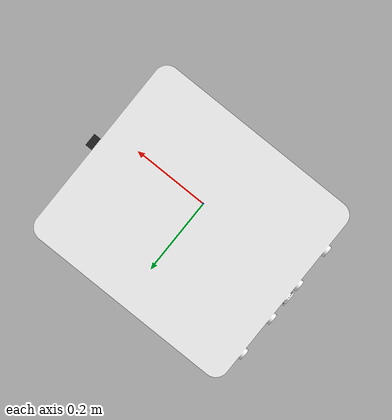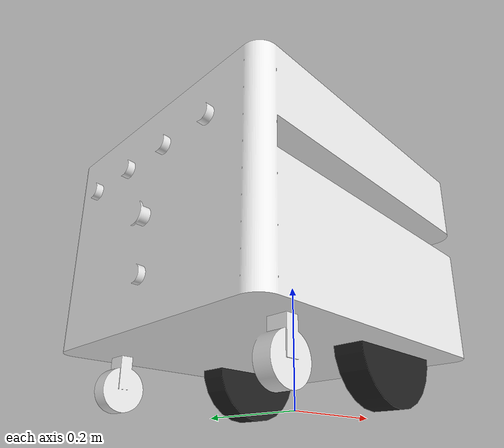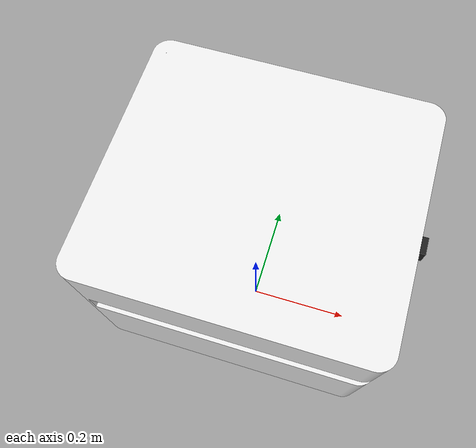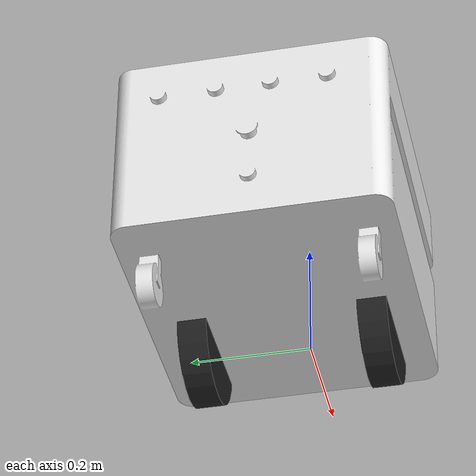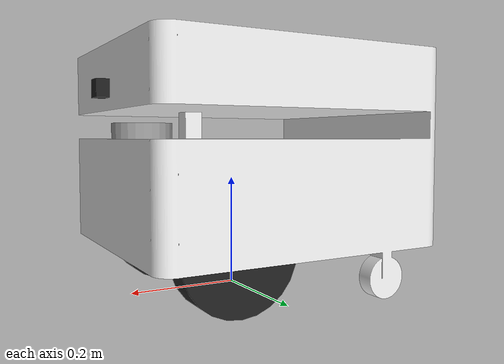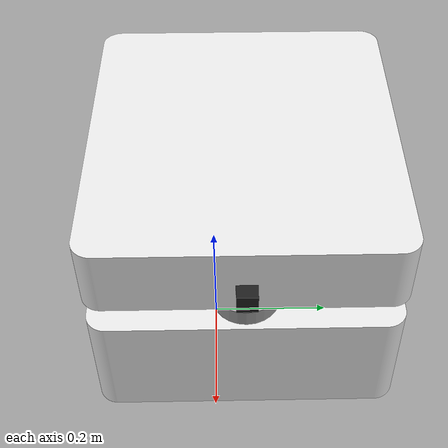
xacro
<?xml version="1.0"?>
<robot xmlns:xacro="http://www.ros.org/wiki/xacro" name="palmares_bot">
    <!-- Robot description for Palmares Bot (differential drive with STL mesh) -->
    <xacro:arg name="tof_lidar" default="true"/>
    <xacro:arg name="camera" default="true"/>

    <!-- Include common macros (inertia helpers + materials) -->
    <xacro:include filename="common.xacro"/>

    <!-- Include Palmares lidar (parents to 'chassis' link defined below) -->
    <xacro:include filename="palmares_lidar.xacro"/>
    <xacro:if value="$(arg tof_lidar)">
        <xacro:include filename="palmares_tof_lidar.xacro"/>
    </xacro:if>
    <xacro:if value="$(arg camera)">
        <xacro:include filename="camera.xacro"/>
    </xacro:if>

    <!-- ═══ base_link (Nav2/Gazebo base frame) ════════════════════════════ -->
    <link name="base_link">
        <visual>
            <origin xyz="0 0 0" rpy="0 0 0"/>
            <geometry>
                <mesh filename="file://$(find sim_bot)/meshes/palmares.stl"
                      scale="0.001 0.001 0.001"/>
            </geometry>
            <material name="white"/>
        </visual>
        <collision>
            <!-- Lower half of the body: Z 0 → 0.200 m -->
            <origin xyz="-0.0145 0.050 0.100" rpy="0 0 0"/>
            <geometry>
                <box size="0.533 0.460 0.200"/>
            </geometry>
        </collision>
        <xacro:inertial_box mass="35.0" x="0.533" y="0.460" z="0.428">
            <origin xyz="-0.0145 0.050 0.214" rpy="0 0 0"/>
        </xacro:inertial_box>
    </link>

    <!-- ═══ base_footprint (ground-level helper frame) ═══════════════════ -->
    <joint name="base_footprint_joint" type="fixed">
        <parent link="base_link"/>
        <child link="base_footprint"/>
        <origin xyz="0 0 0" rpy="0 0 0"/>
    </joint>
    <link name="base_footprint"/>

    <!-- Left Wheel -->
    <joint name="left_wheel_joint" type="continuous">
        <parent link="base_link"/>
        <child link="left_wheel"/>
        <origin xyz="0.100 0.2025 0.100" rpy="-${pi/2} 0 0"/>
        <axis xyz="0 0 1"/>
    </joint>
    <link name="left_wheel">
        <visual>
            <geometry>
                <cylinder radius="0.100" length="0.050"/>
            </geometry>
            <material name="black"/>
        </visual>
        <collision>
            <geometry>
                <sphere radius="0.100"/>
            </geometry>
        </collision>
        <xacro:inertial_cylinder mass="2.0" length="0.050" radius="0.100">
            <origin xyz="0 0 0" rpy="0 0 0"/>
        </xacro:inertial_cylinder>
    </link>

    <!-- Right Wheel -->
    <joint name="right_wheel_joint" type="continuous">
        <parent link="base_link"/>
        <child link="right_wheel"/>
        <origin xyz="0.100 -0.1025 0.100" rpy="${pi/2} 0 0"/>
        <axis xyz="0 0 -1"/>
    </joint>
    <link name="right_wheel">
        <visual>
            <geometry>
                <cylinder radius="0.100" length="0.050"/>
            </geometry>
            <material name="black"/>
        </visual>
        <collision>
            <geometry>
                <sphere radius="0.100"/>
            </geometry>
        </collision>
        <xacro:inertial_cylinder mass="2.0" length="0.050" radius="0.100">
            <origin xyz="0 0 0" rpy="0 0 0"/>
        </xacro:inertial_cylinder>
    </link>

    <joint name="chassis_joint" type="fixed">
        <parent link="base_link"/>
        <child link="chassis"/>
        <origin xyz="0.194 0.050 0.175" rpy="0 0 0"/>
    </joint>
    <link name="chassis"/>

    <gazebo reference="base_link">
        <mu1>0.01</mu1>
        <mu2>0.01</mu2>
    </gazebo>

    <gazebo reference="left_wheel">
        <material>Gazebo/Black</material>
        <mu1>2.0</mu1>
        <mu2>2.0</mu2>
        <kp>1e6</kp>
        <kd>1.0</kd>
    </gazebo>

    <gazebo reference="right_wheel">
        <material>Gazebo/Black</material>
        <mu1>2.0</mu1>
        <mu2>2.0</mu2>
        <kp>1e6</kp>
        <kd>1.0</kd>
    </gazebo>

    <!-- ═══ Gazebo plugins ════════════════════════════════════════════════ -->
    <gazebo>
        <!-- Differential Drive: publishes odom + TF odom→base_link -->
        <plugin filename="gz-sim-diff-drive-system"
                name="gz::sim::systems::DiffDrive">
            <left_joint>left_wheel_joint</left_joint>
            <right_joint>right_wheel_joint</right_joint>
            <wheel_separation>0.305</wheel_separation>
            <wheel_radius>0.100</wheel_radius>
            <max_linear_acceleration>6.0</max_linear_acceleration>
            <frame_id>odom</frame_id>
            <child_frame_id>base_link</child_frame_id>
            <tf_topic>/tf</tf_topic>
            <topic>cmd_vel</topic>
            <odom_topic>odom</odom_topic>
            <odom_publish_frequency>30</odom_publish_frequency>
        </plugin>

        <!-- Joint State Publisher: publishes wheel positions to /joint_states -->
        <plugin filename="gz-sim-joint-state-publisher-system"
                name="gz::sim::systems::JointStatePublisher">
            <topic>joint_states</topic>
            <joint_name>left_wheel_joint</joint_name>
            <joint_name>right_wheel_joint</joint_name>
        </plugin>
    </gazebo>

</robot>

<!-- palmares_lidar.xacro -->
<robot xmlns:xacro="http://www.ros.org/wiki/xacro">
    <!-- Lidar configuration dedicated to palmares_bot. -->
    <joint name="laser_joint" type="fixed">
        <parent link="chassis"/>
        <child link="laser_frame"/>
        <origin xyz="0 0 0.1" rpy="0 0 0"/>
    </joint>

    <link name="laser_frame">
        <visual>
            <geometry>
                <cylinder radius="0.05" length="0.05"/>
            </geometry>
            <material name="grey"/>
        </visual>
        <collision>
            <geometry>
                <cylinder radius="0.05" length="0.05"/>
            </geometry>
        </collision>
        <xacro:inertial_cylinder mass="0.1" length="0.05" radius="0.05">
            <origin xyz="0 0 0" rpy="0 0 0"/>
        </xacro:inertial_cylinder>
    </link>

    <gazebo reference="laser_frame">
        <material>Gazebo/Grey</material>

        <sensor name="laser" type="gpu_lidar">
            <pose>0 0 0 0 0 0</pose>
            <always_on>true</always_on>
            <visualize>true</visualize>
            <update_rate>10</update_rate>
            <topic>scan</topic>
            <gz_frame_id>laser_frame</gz_frame_id>
            <lidar>
                <scan>
                    <horizontal>
                        <samples>360</samples>
                        <!-- 270 deg front field of view to avoid self-hits behind the robot. -->
                        <min_angle>-2.356</min_angle>
                        <max_angle>2.356</max_angle>
                    </horizontal>
                </scan>
                <range>
                    <min>0.30</min>
                    <max>12</max>
                </range>
            </lidar>
        </sensor>
    </gazebo>
</robot>

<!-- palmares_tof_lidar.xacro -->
<robot xmlns:xacro="http://www.ros.org/wiki/xacro">
    <!-- Narrow 3D point cloud sensor used to exercise Nav2 STVL in simulation. -->
    <joint name="tof_lidar_joint" type="fixed">
        <parent link="chassis"/>
        <child link="tof_lidar_frame"/>
        <origin xyz="0.065 0 0.18" rpy="0 0 0"/>
    </joint>

    <link name="tof_lidar_frame">
        <visual>
            <geometry>
                <box size="0.030 0.030 0.030"/>
            </geometry>
            <material name="black"/>
        </visual>
        <collision>
            <geometry>
                <box size="0.030 0.030 0.030"/>
            </geometry>
        </collision>
        <xacro:inertial_box mass="0.05" x="0.030" y="0.030" z="0.030">
            <origin xyz="0 0 0" rpy="0 0 0"/>
        </xacro:inertial_box>
    </link>

    <gazebo reference="tof_lidar_frame">
        <material>Gazebo/Black</material>

        <sensor name="tof_lidar" type="gpu_lidar">
            <pose>0 0 0 0 0 0</pose>
            <always_on>true</always_on>
            <visualize>true</visualize>
            <update_rate>10</update_rate>
            <topic>cloud</topic>
            <gz_frame_id>tof_lidar_frame</gz_frame_id>
            <lidar>
                <scan>
                    <horizontal>
                        <samples>100</samples>
                        <min_angle>-0.610865</min_angle>
                        <max_angle>0.610865</max_angle>
                    </horizontal>
                    <vertical>
                        <samples>100</samples>
                        <min_angle>-0.523599</min_angle>
                        <max_angle>0.523599</max_angle>
                    </vertical>
                </scan>
                <range>
                    <min>0.30</min>
                    <max>2.50</max>
                </range>
            </lidar>
        </sensor>
    </gazebo>
</robot>

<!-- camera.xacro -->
<robot xmlns:xacro="http://www.ros.org/wiki/xacro" >
    <!-- Camera's urdf - C720-like (78 deg diagonal FOV, 1280x720 @ 30 fps)
         Positioned at the same frontal line as the LiDAR (chassis origin X),
         centred in Y, 4 cm above chassis. -->
    <joint name="camera_joint" type="fixed">
        <parent link="chassis"/>
        <child link="camera_link"/>
        <!-- X: same as lidar (chassis X = 0)
             Y: -0.075 -> robot frame Y = 0.05 + (-0.075) = -0.025 m (2.5 cm right of centre)
             Z: 0.09 -> align camera with ArUco marker height -->
        <origin xyz="0 -0.075 0.09" rpy="0 0 0"/>
    </joint>
    <link name="camera_link">
        <visual>
            <!-- Approximates a small USB webcam body -->
            <geometry>
                <box size="0.012 0.075 0.025"/>
            </geometry>
            <material name="black"/>
        </visual>
    </link>

    <joint name="camera_optical_joint" type="fixed">
        <parent link="camera_link"/>
        <child link="camera_link_optical"/>
        <origin xyz="0 0 0" rpy="${-pi/2} 0 ${-pi/2}"/>
    </joint>
    <link name="camera_link_optical"/>

    <!-- Camera Gazebo Sensor Plugin - Logitech C720-like -->
    <gazebo reference="camera_link">
        <material>Gazebo/Black</material>

        <sensor name="camera" type="camera">
            <pose> 0 0 0 0 0 0 </pose>
            <always_on>true</always_on>
            <visualize>true</visualize>
            <update_rate>30</update_rate>
            <topic>camera/image</topic>
            <gz_frame_id>camera_link_optical</gz_frame_id>
            <camera>
                <camera_info_topic>camera/camera_info</camera_info_topic>
                <!-- C720: ~78 deg diagonal ~= 1.20 rad horizontal FOV at 16:9 -->
                <horizontal_fov>1.20</horizontal_fov>
                <image>
                    <format>R8G8B8</format>
                    <width>1280</width>
                    <height>720</height>
                </image>
                <clip>
                    <near>0.05</near>
                    <far>10.0</far>
                </clip>
            </camera>
        </sensor>
    </gazebo>

</robot>
